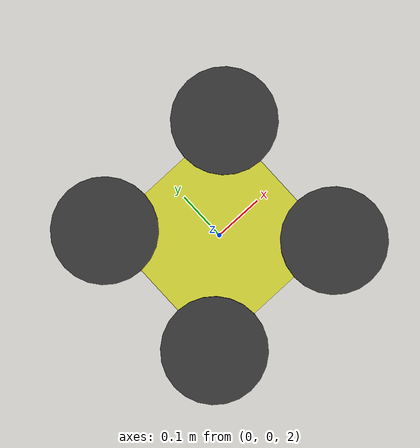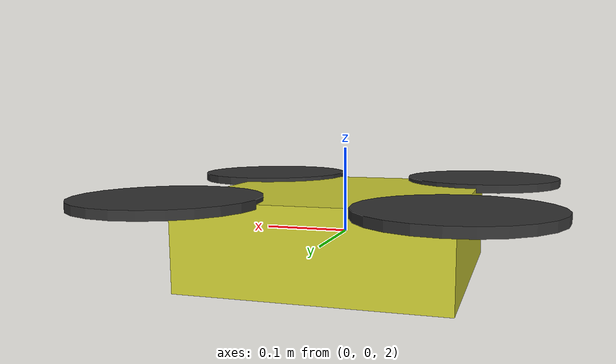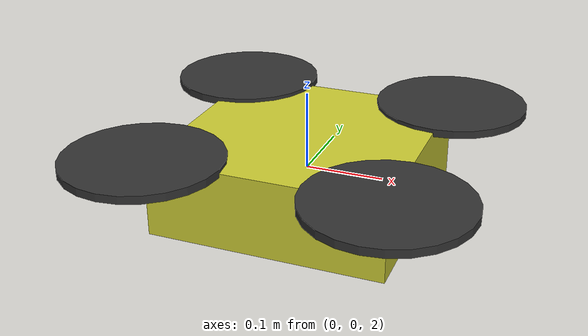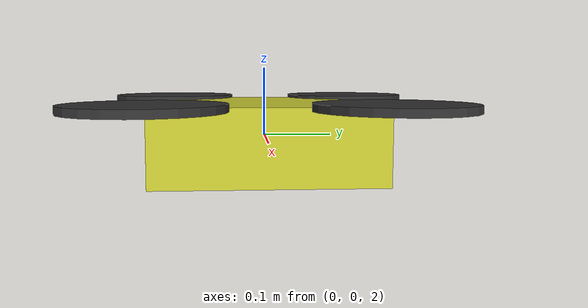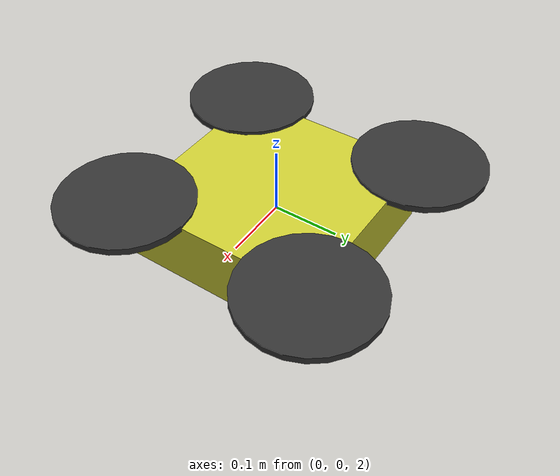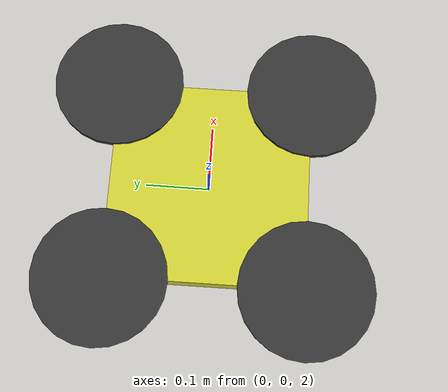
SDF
<?xml version="1.0"?>
<sdf version="1.7">
  <model name="quadrotor">
    <pose>0 0 2 0 0 0</pose>

    <link name="base_link">
      <inertial>
        <mass>1.5</mass>
        <inertia>
          <ixx>0.0115</ixx>
          <ixy>0</ixy>
          <ixz>0</ixz>
          <iyy>0.0115</iyy>
          <iyz>0</iyz>
          <izz>0.0218</izz>
        </inertia>
      </inertial>

      <collision name="collision">
        <geometry>
          <box>
            <size>0.3 0.3 0.1</size>
          </box>
        </geometry>
        <surface>
          <contact>
            <ode>
              <max_vel>0.1</max_vel>
              <min_depth>0.001</min_depth>
            </ode>
          </contact>
        </surface>
      </collision>

      <visual name="visual">
        <geometry>
          <box>
            <size>0.3 0.3 0.1</size>
          </box>
        </geometry>
        <material>
          <ambient>0.8 0.8 0.2 1</ambient>
          <diffuse>0.8 0.8 0.2 1</diffuse>
        </material>
      </visual>
    </link>

    <!-- Camera link -->
    <link name="camera_link">
      <pose>0.15 0 0 0 0 0</pose>
      <inertial>
        <mass>0.01</mass>
        <inertia>
          <ixx>1e-6</ixx>
          <ixy>0</ixy>
          <ixz>0</ixz>
          <iyy>1e-6</iyy>
          <iyz>0</iyz>
          <izz>1e-6</izz>
        </inertia>
      </inertial>

      <sensor name="camera" type="depth">
        <camera>
          <horizontal_fov>1.047</horizontal_fov>
          <image>
            <width>640</width>
            <height>480</height>
            <format>R8G8B8</format>
          </image>
          <clip>
            <near>0.1</near>
            <far>10.0</far>
          </clip>
        </camera>
        <always_on>true</always_on>
        <update_rate>30</update_rate>
        <visualize>true</visualize>
      </sensor>
    </link>

    <!-- LiDAR link -->
    <link name="lidar_link">
      <pose>0 0 0.1 0 0 0</pose>
      <inertial>
        <mass>0.05</mass>
        <inertia>
          <ixx>1e-5</ixx>
          <ixy>0</ixy>
          <ixz>0</ixz>
          <iyy>1e-5</iyy>
          <iyz>0</iyz>
          <izz>1e-5</izz>
        </inertia>
      </inertial>

      <sensor name="lidar" type="ray">
        <ray>
          <scan>
            <horizontal>
              <samples>360</samples>
              <resolution>1</resolution>
              <min_angle>-3.14159</min_angle>
              <max_angle>3.14159</max_angle>
            </horizontal>
          </scan>
          <range>
            <min>0.1</min>
            <max>10.0</max>
            <resolution>0.01</resolution>
          </range>
        </ray>
        <plugin name="lidar_plugin" filename="libgazebo_ros_ray_sensor.so">
          <ros>
            <namespace>/drone</namespace>
            <remapping>~/out:=lidar/scan</remapping>
          </ros>
          <output_type>sensor_msgs/LaserScan</output_type>
          <frame_name>lidar_link</frame_name>
        </plugin>
      </sensor>
    </link>

    <!-- IMU link -->
    <link name="imu_link">
      <pose>0 0 0 0 0 0</pose>
      <inertial>
        <mass>0.01</mass>
        <inertia>
          <ixx>1e-6</ixx>
          <ixy>0</ixy>
          <ixz>0</ixz>
          <iyy>1e-6</iyy>
          <iyz>0</iyz>
          <izz>1e-6</izz>
        </inertia>
      </inertial>

      <sensor name="imu" type="imu">
        <imu>
          <angular_velocity>
            <x>
              <noise type="gaussian">
                <mean>0</mean>
                <stddev>2e-4</stddev>
              </noise>
            </x>
            <y>
              <noise type="gaussian">
                <mean>0</mean>
                <stddev>2e-4</stddev>
              </noise>
            </y>
            <z>
              <noise type="gaussian">
                <mean>0</mean>
                <stddev>2e-4</stddev>
              </noise>
            </z>
          </angular_velocity>
          <linear_acceleration>
            <x>
              <noise type="gaussian">
                <mean>0</mean>
                <stddev>1.7e-2</stddev>
              </noise>
            </x>
            <y>
              <noise type="gaussian">
                <mean>0</mean>
                <stddev>1.7e-2</stddev>
              </noise>
            </y>
            <z>
              <noise type="gaussian">
                <mean>0</mean>
                <stddev>1.7e-2</stddev>
              </noise>
            </z>
          </linear_acceleration>
        </imu>
        <always_on>true</always_on>
        <update_rate>100</update_rate>
        <plugin name="imu_plugin" filename="libgazebo_ros_imu.so">
          <ros>
            <namespace>/drone</namespace>
            <remapping>~/out:=imu/data</remapping>
          </ros>
          <frame_name>imu_link</frame_name>
        </plugin>
      </sensor>
    </link>

    <!-- Joints -->
    <joint name="camera_joint" type="fixed">
      <parent>base_link</parent>
      <child>camera_link</child>
    </joint>

    <joint name="lidar_joint" type="fixed">
      <parent>base_link</parent>
      <child>lidar_link</child>
    </joint>

    <joint name="imu_joint" type="fixed">
      <parent>base_link</parent>
      <child>imu_link</child>
    </joint>

    <!-- Propeller links -->
    <link name="front_left_prop">
      <pose>0.15 0.15 0.05 0 0 0</pose>
      <inertial>
        <mass>0.005</mass>
        <inertia>
          <ixx>1e-6</ixx>
          <ixy>0</ixy>
          <ixz>0</ixz>
          <iyy>1e-6</iyy>
          <iyz>0</iyz>
          <izz>1e-6</izz>
        </inertia>
      </inertial>
      <visual name="visual">
        <geometry>
          <cylinder>
            <radius>0.1</radius>
            <length>0.01</length>
          </cylinder>
        </geometry>
        <material>
          <ambient>0.2 0.2 0.2 1</ambient>
          <diffuse>0.2 0.2 0.2 1</diffuse>
        </material>
      </visual>
    </link>

    <link name="front_right_prop">
      <pose>0.15 -0.15 0.05 0 0 0</pose>
      <inertial>
        <mass>0.005</mass>
        <inertia>
          <ixx>1e-6</ixx>
          <ixy>0</ixy>
          <ixz>0</ixz>
          <iyy>1e-6</iyy>
          <iyz>0</iyz>
          <izz>1e-6</izz>
        </inertia>
      </inertial>
      <visual name="visual">
        <geometry>
          <cylinder>
            <radius>0.1</radius>
            <length>0.01</length>
          </cylinder>
        </geometry>
        <material>
          <ambient>0.2 0.2 0.2 1</ambient>
          <diffuse>0.2 0.2 0.2 1</diffuse>
        </material>
      </visual>
    </link>

    <link name="rear_left_prop">
      <pose>-0.15 0.15 0.05 0 0 0</pose>
      <inertial>
        <mass>0.005</mass>
        <inertia>
          <ixx>1e-6</ixx>
          <ixy>0</ixy>
          <ixz>0</ixz>
          <iyy>1e-6</iyy>
          <iyz>0</iyz>
          <izz>1e-6</izz>
        </inertia>
      </inertial>
      <visual name="visual">
        <geometry>
          <cylinder>
            <radius>0.1</radius>
            <length>0.01</length>
          </cylinder>
        </geometry>
        <material>
          <ambient>0.2 0.2 0.2 1</ambient>
          <diffuse>0.2 0.2 0.2 1</diffuse>
        </material>
      </visual>
    </link>

    <link name="rear_right_prop">
      <pose>-0.15 -0.15 0.05 0 0 0</pose>
      <inertial>
        <mass>0.005</mass>
        <inertia>
          <ixx>1e-6</ixx>
          <ixy>0</ixy>
          <ixz>0</ixz>
          <iyy>1e-6</iyy>
          <iyz>0</iyz>
          <izz>1e-6</izz>
        </inertia>
      </inertial>
      <visual name="visual">
        <geometry>
          <cylinder>
            <radius>0.1</radius>
            <length>0.01</length>
          </cylinder>
        </geometry>
        <material>
          <ambient>0.2 0.2 0.2 1</ambient>
          <diffuse>0.2 0.2 0.2 1</diffuse>
        </material>
      </visual>
    </link>

    <!-- Propeller joints -->
    <joint name="front_left_prop_joint" type="revolute">
      <parent>base_link</parent>
      <child>front_left_prop</child>
      <axis>
        <xyz>0 0 1</xyz>
      </axis>
    </joint>

    <joint name="front_right_prop_joint" type="revolute">
      <parent>base_link</parent>
      <child>front_right_prop</child>
      <axis>
        <xyz>0 0 1</xyz>
      </axis>
    </joint>

    <joint name="rear_left_prop_joint" type="revolute">
      <parent>base_link</parent>
      <child>rear_left_prop</child>
      <axis>
        <xyz>0 0 1</xyz>
      </axis>
    </joint>

    <joint name="rear_right_prop_joint" type="revolute">
      <parent>base_link</parent>
      <child>rear_right_prop</child>
      <axis>
        <xyz>0 0 1</xyz>
      </axis>
    </joint>

    <!-- Gazebo plugins -->
    <plugin name="quadrotor_controller" filename="libgazebo_ros_force.so">
      <ros>
        <namespace>/drone</namespace>
      </ros>
      <body_name>base_link</body_name>
      <force_frame_name>base_link</force_frame_name>
      <link_name>base_link</link_name>
    </plugin>

    <plugin name="odometry_plugin" filename="libgazebo_ros_p3d.so">
      <ros>
        <namespace>/drone</namespace>
        <remapping>~/odom:=odom</remapping>
      </ros>
      <update_rate>50</update_rate>
      <body_name>base_link</body_name>
      <frame_name>odom</frame_name>
    </plugin>

    <plugin name="joint_state_publisher" filename="libgazebo_ros_joint_state_publisher.so">
      <ros>
        <namespace>/drone</namespace>
        <remapping>~/out:=joint_states</remapping>
      </ros>
      <update_rate>50</update_rate>
      <joint_name>front_left_prop_joint</joint_name>
      <joint_name>front_right_prop_joint</joint_name>
      <joint_name>rear_left_prop_joint</joint_name>
      <joint_name>rear_right_prop_joint</joint_name>
    </plugin>
  </model>
</sdf>
